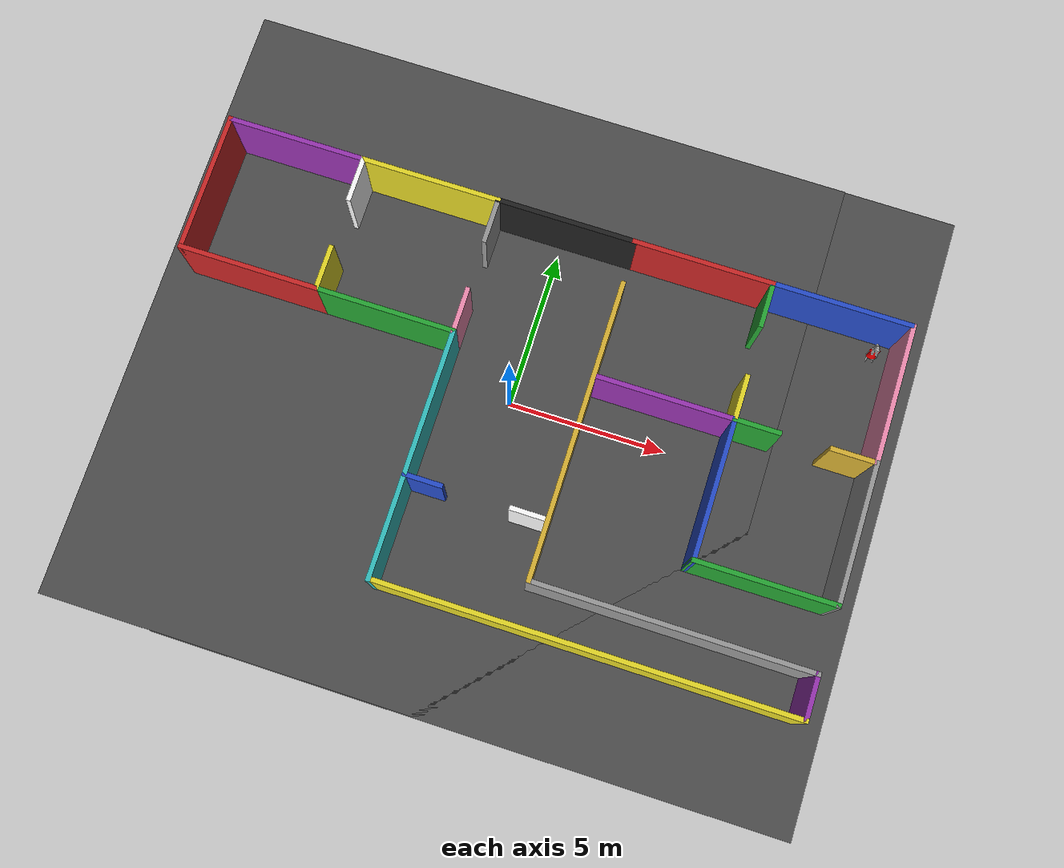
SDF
<sdf version="1.6">
 <world name="default">
  <model name="ground_plane">
   <static>1</static>
   <link name="link">
    <collision name="collision">
     <geometry><plane><normal>0 0 1</normal><size>100 100</size></plane></geometry>
     <surface><friction><ode><mu>100</mu><mu2>50</mu2></ode></friction></surface>
    </collision>
    <visual name="visual">
     <cast_shadows>0</cast_shadows>
     <geometry><plane><normal>0 0 1</normal><size>100 100</size></plane></geometry>
     <material>
      <script><uri>file://media/materials/scripts/gazebo.material</uri><name>Gazebo/Grey</name></script>
     </material>
    </visual>
   </link>
  </model>
  <gravity>0 0 -9.8</gravity>
  <magnetic_field>6e-06 2.3e-05 -4.2e-05</magnetic_field>
  <atmosphere type="adiabatic"/>
  <physics name="default_physics" default="0" type="ode">
   <max_step_size>0.001</max_step_size>
   <real_time_factor>1</real_time_factor>
   <real_time_update_rate>1000</real_time_update_rate>
  </physics>
  <scene><ambient>0.4 0.4 0.4 1</ambient><background>0.7 0.7 0.7 1</background><shadows>1</shadows></scene>
  <spherical_coordinates>
   <surface_model>EARTH_WGS84</surface_model>
   <latitude_deg>0</latitude_deg>
   <longitude_deg>0</longitude_deg>
   <elevation>0</elevation>
   <heading_deg>0</heading_deg>
  </spherical_coordinates>
  <model name="Woorld_New">
   <pose>0.055568 -0.612256 0 0 -0 0</pose>
   <link name="Wall_0">
    <collision name="Wall_0_Collision">
     <geometry><box><size>4.5 0.15 2.5</size></box></geometry>
     <pose>0 0 1.25 0 -0 0</pose>
    </collision>
    <visual name="Wall_0_Visual">
     <pose>0 0 1.25 0 -0 0</pose>
     <geometry><box><size>4.5 0.15 2.5</size></box></geometry>
     <material>
      <script><uri>file://media/materials/scripts/gazebo.material</uri><name>Gazebo/Red</name></script>
      <ambient>1 1 1 1</ambient>
     </material>
     <meta><layer>0</layer></meta>
    </visual>
    <pose>-10.8752 3.875 0 0 -0 1.5708</pose>
   </link>
   <link name="Wall_11">
    <collision name="Wall_11_Collision">
     <geometry><box><size>4.5 0.15 2.5</size></box></geometry>
     <pose>0 0 1.25 0 -0 0</pose>
    </collision>
    <visual name="Wall_11_Visual">
     <pose>0 0 1.25 0 -0 0</pose>
     <geometry><box><size>4.5 0.15 2.5</size></box></geometry>
     <material>
      <script><uri>file://media/materials/scripts/gazebo.material</uri><name>Gazebo/Green</name></script>
      <ambient>1 1 1 1</ambient>
     </material>
     <meta><layer>0</layer></meta>
    </visual>
    <pose>-4.35017 1.7 0 0 -0 0</pose>
   </link>
   <link name="Wall_13">
    <collision name="Wall_13_Collision">
     <geometry><box><size>4.5 0.15 2.5</size></box></geometry>
     <pose>0 0 1.25 0 -0 0</pose>
    </collision>
    <visual name="Wall_13_Visual">
     <pose>0 0 1.25 0 -0 0</pose>
     <geometry><box><size>4.5 0.15 2.5</size></box></geometry>
     <material>
      <script><uri>file://media/materials/scripts/gazebo.material</uri><name>Gazebo/Yellow</name></script>
      <ambient>1 1 1 1</ambient>
     </material>
     <meta><layer>0</layer></meta>
    </visual>
    <pose>-4.35017 6.05 0 0 -0 0</pose>
   </link>
   <link name="Wall_14">
    <collision name="Wall_14_Collision">
     <geometry><box><size>1.5 0.15 2.5</size></box></geometry>
     <pose>0 0 1.25 0 -0 0</pose>
    </collision>
    <visual name="Wall_14_Visual">
     <pose>0 0 1.25 0 -0 0</pose>
     <geometry><box><size>1.5 0.15 2.5</size></box></geometry>
     <material>
      <script><uri>file://media/materials/scripts/gazebo.material</uri><name>Gazebo/Grey</name></script>
      <ambient>1 1 1 1</ambient>
     </material>
     <meta><layer>0</layer></meta>
    </visual>
    <pose>-2.17517 5.375 0 0 0 -1.5708</pose>
   </link>
   <link name="Wall_16">
    <collision name="Wall_16_Collision">
     <geometry><box><size>1.5 0.15 2.5</size></box></geometry>
     <pose>0 0 1.25 0 -0 0</pose>
    </collision>
    <visual name="Wall_16_Visual">
     <pose>0 0 1.25 0 -0 0</pose>
     <geometry><box><size>1.5 0.15 2.5</size></box></geometry>
     <material>
      <script><uri>file://media/materials/scripts/gazebo.material</uri><name>Gazebo/Pink</name></script>
      <ambient>1 1 1 1</ambient>
     </material>
     <meta><layer>0</layer></meta>
    </visual>
    <pose>-2.17517 2.375 0 0 -0 1.5708</pose>
   </link>
   <link name="Wall_18">
    <collision name="Wall_18_Collision">
     <geometry><box><size>4.5 0.15 2.5</size></box></geometry>
     <pose>0 0 1.25 0 -0 0</pose>
    </collision>
    <visual name="Wall_18_Visual">
     <pose>0 0 1.25 0 -0 0</pose>
     <geometry><box><size>4.5 0.15 2.5</size></box></geometry>
     <material>
      <script><uri>file://media/materials/scripts/gazebo.material</uri><name>Gazebo/FlatBlack</name></script>
      <ambient>1 1 1 1</ambient>
     </material>
     <meta><layer>0</layer></meta>
    </visual>
    <pose>-0.000168 6.05 0 0 -0 0</pose>
   </link>
   <link name="Wall_2">
    <collision name="Wall_2_Collision">
     <geometry><box><size>4.5 0.15 2.5</size></box></geometry>
     <pose>0 0 1.25 0 -0 0</pose>
    </collision>
    <visual name="Wall_2_Visual">
     <pose>0 0 1.25 0 -0 0</pose>
     <geometry><box><size>4.5 0.15 2.5</size></box></geometry>
     <material>
      <script><uri>file://media/materials/scripts/gazebo.material</uri><name>Gazebo/Purple</name></script>
      <ambient>1 1 1 1</ambient>
     </material>
     <meta><layer>0</layer></meta>
    </visual>
    <pose>-8.70017 6.05 0 0 -0 0</pose>
   </link>
   <link name="Wall_20">
    <collision name="Wall_20_Collision">
     <geometry><box><size>7.9 0.15 2.5</size></box></geometry>
     <pose>0 0 1.25 0 -0 0</pose>
    </collision>
    <visual name="Wall_20_Visual">
     <pose>0 0 1.25 0 -0 0</pose>
     <geometry><box><size>7.9 0.15 2.5</size></box></geometry>
     <material>
      <script><uri>file://media/materials/scripts/gazebo.material</uri><name>Gazebo/Turquoise</name></script>
      <ambient>1 1 1 1</ambient>
     </material>
     <meta><layer>0</layer></meta>
    </visual>
    <pose>-2.17517 -2.175 0 0 0 -1.5708</pose>
   </link>
   <link name="Wall_22">
    <collision name="Wall_22_Collision">
     <geometry><box><size>1.25 0.15 2.5</size></box></geometry>
     <pose>0 0 1.25 0 -0 0</pose>
    </collision>
    <visual name="Wall_22_Visual">
     <pose>0 0 1.25 0 -0 0</pose>
     <geometry><box><size>1.25 0.15 2.5</size></box></geometry>
     <material>
      <script><uri>file://media/materials/scripts/gazebo.material</uri><name>Gazebo/BlueLaser</name></script>
      <ambient>1 1 1 1</ambient>
     </material>
     <meta><layer>0</layer></meta>
    </visual>
    <pose>-1.61117 -2.848 0 0 -0 0</pose>
   </link>
   <link name="Wall_24">
    <collision name="Wall_24_Collision">
     <geometry><box><size>9.5 0.15 2.5</size></box></geometry>
     <pose>0 0 1.25 0 -0 0</pose>
    </collision>
    <visual name="Wall_24_Visual">
     <pose>0 0 1.25 0 -0 0</pose>
     <geometry><box><size>9.5 0.15 2.5</size></box></geometry>
     <material>
      <script><uri>file://media/materials/scripts/gazebo.material</uri><name>Gazebo/Gold</name></script>
      <ambient>1 1 1 1</ambient>
     </material>
     <meta><layer>0</layer></meta>
    </visual>
    <pose>2.2188 -0.010529 0 0 0 -1.5708</pose>
   </link>
   <link name="Wall_29">
    <collision name="Wall_29_Collision">
     <geometry><box><size>1.25 0.15 2.5</size></box></geometry>
     <pose>0 0 1.25 0 -0 0</pose>
    </collision>
    <visual name="Wall_29_Visual">
     <pose>0 0 1.25 0 -0 0</pose>
     <geometry><box><size>1.25 0.15 2.5</size></box></geometry>
     <material>
      <script><uri>file://media/materials/scripts/gazebo.material</uri><name>Gazebo/Chrome</name></script>
      <ambient>1 1 1 1</ambient>
     </material>
     <meta><layer>0</layer></meta>
    </visual>
    <pose>1.66774 -2.84088 0 0 -0 3.14159</pose>
   </link>
   <link name="Wall_3">
    <collision name="Wall_3_Collision">
     <geometry><box><size>1.5 0.15 2.5</size></box></geometry>
     <pose>0 0 1.25 0 -0 0</pose>
    </collision>
    <visual name="Wall_3_Visual">
     <pose>0 0 1.25 0 -0 0</pose>
     <geometry><box><size>1.5 0.15 2.5</size></box></geometry>
     <material>
      <script><uri>file://media/materials/scripts/gazebo.material</uri><name>Gazebo/Brick</name></script>
      <ambient>1 1 1 1</ambient>
     </material>
     <meta><layer>0</layer></meta>
    </visual>
    <pose>-6.52517 5.375 0 0 0 -1.5708</pose>
   </link>
   <link name="Wall_31">
    <collision name="Wall_31_Collision">
     <geometry><box><size>8.75 0.15 2.5</size></box></geometry>
     <pose>0 0 1.25 0 -0 0</pose>
    </collision>
    <visual name="Wall_31_Visual">
     <pose>0 0 1.25 0 -0 0</pose>
     <geometry><box><size>8.75 0.15 2.5</size></box></geometry>
     <material>
      <script><uri>file://media/materials/scripts/gazebo.material</uri><name>Gazebo/Grey</name></script>
      <ambient>1 1 1 1</ambient>
     </material>
     <meta><layer>0</layer></meta>
    </visual>
    <pose>6.51879 -4.68553 0 0 -0 0</pose>
   </link>
   <link name="Wall_33">
    <collision name="Wall_33_Collision">
     <geometry><box><size>13 0.15 2.5</size></box></geometry>
     <pose>0 0 1.25 0 -0 0</pose>
    </collision>
    <visual name="Wall_33_Visual">
     <pose>0 0 1.25 0 -0 0</pose>
     <geometry><box><size>13 0.15 2.5</size></box></geometry>
     <material>
      <script><uri>file://media/materials/scripts/gazebo.material</uri><name>Gazebo/Yellow</name></script>
      <ambient>1 1 1 1</ambient>
     </material>
     <meta><layer>0</layer></meta>
    </visual>
    <pose>4.39379 -6.03553 0 0 -0 3.14159</pose>
   </link>
   <link name="Wall_36">
    <collision name="Wall_36_Collision">
     <geometry><box><size>4.5 0.15 2.5</size></box></geometry>
     <pose>0 0 1.25 0 -0 0</pose>
    </collision>
    <visual name="Wall_36_Visual">
     <pose>0 0 1.25 0 -0 0</pose>
     <geometry><box><size>4.5 0.15 2.5</size></box></geometry>
     <material>
      <script><uri>file://media/materials/scripts/gazebo.material</uri><name>Gazebo/Red</name></script>
      <ambient>1 1 1 1</ambient>
     </material>
     <meta><layer>0</layer></meta>
    </visual>
    <pose>4.34983 6.05 0 0 -0 0</pose>
   </link>
   <link name="Wall_37">
    <collision name="Wall_37_Collision">
     <geometry><box><size>1.5 0.15 2.5</size></box></geometry>
     <pose>0 0 1.25 0 -0 0</pose>
    </collision>
    <visual name="Wall_37_Visual">
     <pose>0 0 1.25 0 -0 0</pose>
     <geometry><box><size>1.5 0.15 2.5</size></box></geometry>
     <material>
      <script><uri>file://media/materials/scripts/gazebo.material</uri><name>Gazebo/Green</name></script>
      <ambient>1 1 1 1</ambient>
     </material>
     <meta><layer>0</layer></meta>
    </visual>
    <pose>6.52483 5.375 0 0 0 -1.5708</pose>
   </link>
   <link name="Wall_39">
    <collision name="Wall_39_Collision">
     <geometry><box><size>4.5 0.15 2.5</size></box></geometry>
     <pose>0 0 1.25 0 -0 0</pose>
    </collision>
    <visual name="Wall_39_Visual">
     <pose>0 0 1.25 0 -0 0</pose>
     <geometry><box><size>4.5 0.15 2.5</size></box></geometry>
     <material>
      <script><uri>file://media/materials/scripts/gazebo.material</uri><name>Gazebo/Blue</name></script>
      <ambient>1 1 1 1</ambient>
     </material>
     <meta><layer>0</layer></meta>
    </visual>
    <pose>8.69983 6.05 0 0 -0 0</pose>
   </link>
   <link name="Wall_40">
    <collision name="Wall_40_Collision">
     <geometry><box><size>4.5 0.15 2.5</size></box></geometry>
     <pose>0 0 1.25 0 -0 0</pose>
    </collision>
    <visual name="Wall_40_Visual">
     <pose>0 0 1.25 0 -0 0</pose>
     <geometry><box><size>4.5 0.15 2.5</size></box></geometry>
     <material>
      <script><uri>file://media/materials/scripts/gazebo.material</uri><name>Gazebo/Pink</name></script>
      <ambient>1 1 1 1</ambient>
     </material>
     <meta><layer>0</layer></meta>
    </visual>
    <pose>10.8748 3.875 0 0 0 -1.5708</pose>
   </link>
   <link name="Wall_41">
    <collision name="Wall_41_Collision">
     <geometry><box><size>1.5 0.15 2.5</size></box></geometry>
     <pose>0 0 1.25 0 -0 0</pose>
    </collision>
    <visual name="Wall_41_Visual">
     <pose>0 0 1.25 0 -0 0</pose>
     <geometry><box><size>1.5 0.15 2.5</size></box></geometry>
     <material>
      <script><uri>file://media/materials/scripts/gazebo.material</uri><name>Gazebo/Gold</name></script>
      <ambient>1 1 1 1</ambient>
     </material>
     <meta><layer>0</layer></meta>
    </visual>
    <pose>10.1998 1.7 0 0 -0 3.14159</pose>
   </link>
   <link name="Wall_43">
    <collision name="Wall_43_Collision">
     <geometry><box><size>4.5 0.15 2.5</size></box></geometry>
     <pose>0 0 1.25 0 -0 0</pose>
    </collision>
    <visual name="Wall_43_Visual">
     <pose>0 0 1.25 0 -0 0</pose>
     <geometry><box><size>4.5 0.15 2.5</size></box></geometry>
     <material>
      <script><uri>file://media/materials/scripts/gazebo.material</uri><name>Gazebo/Purple</name></script>
      <ambient>1 1 1 1</ambient>
     </material>
     <meta><layer>0</layer></meta>
    </visual>
    <pose>4.39133 1.68063 0 0 -0 0</pose>
   </link>
   <link name="Wall_44">
    <collision name="Wall_44_Collision">
     <geometry><box><size>1.5 0.15 2.5</size></box></geometry>
     <pose>0 0 1.25 0 -0 0</pose>
    </collision>
    <visual name="Wall_44_Visual">
     <pose>0 0 1.25 0 -0 0</pose>
     <geometry><box><size>1.5 0.15 2.5</size></box></geometry>
     <material>
      <script><uri>file://media/materials/scripts/gazebo.material</uri><name>Gazebo/Yellow</name></script>
      <ambient>1 1 1 1</ambient>
     </material>
     <meta><layer>0</layer></meta>
    </visual>
    <pose>6.56633 2.35562 0 0 -0 1.5708</pose>
   </link>
   <link name="Wall_46">
    <collision name="Wall_46_Collision">
     <geometry><box><size>1.5 0.15 2.5</size></box></geometry>
     <pose>0 0 1.25 0 -0 0</pose>
    </collision>
    <visual name="Wall_46_Visual">
     <pose>0 0 1.25 0 -0 0</pose>
     <geometry><box><size>1.5 0.15 2.5</size></box></geometry>
     <material>
      <script><uri>file://media/materials/scripts/gazebo.material</uri><name>Gazebo/Green</name></script>
      <ambient>1 1 1 1</ambient>
     </material>
     <meta><layer>0</layer></meta>
    </visual>
    <pose>7.24133 1.68063 0 0 -0 0</pose>
   </link>
   <link name="Wall_49">
    <collision name="Wall_49_Collision">
     <geometry><box><size>4.5 0.15 2.5</size></box></geometry>
     <pose>0 0 1.25 0 -0 0</pose>
    </collision>
    <visual name="Wall_49_Visual">
     <pose>0 0 1.25 0 -0 0</pose>
     <geometry><box><size>4.5 0.15 2.5</size></box></geometry>
     <material>
      <script><uri>file://media/materials/scripts/gazebo.material</uri><name>Gazebo/Grey</name></script>
      <ambient>1 1 1 1</ambient>
     </material>
     <meta><layer>0</layer></meta>
    </visual>
    <pose>10.8748 -0.475 0 0 0 -1.5708</pose>
   </link>
   <link name="Wall_5">
    <collision name="Wall_5_Collision">
     <geometry><box><size>4.5 0.15 2.5</size></box></geometry>
     <pose>0 0 1.25 0 -0 0</pose>
    </collision>
    <visual name="Wall_5_Visual">
     <pose>0 0 1.25 0 -0 0</pose>
     <geometry><box><size>4.5 0.15 2.5</size></box></geometry>
     <material>
      <script><uri>file://media/materials/scripts/gazebo.material</uri><name>Gazebo/Red</name></script>
      <ambient>1 1 1 1</ambient>
     </material>
     <meta><layer>0</layer></meta>
    </visual>
    <pose>-8.70017 1.7 0 0 -0 0</pose>
   </link>
   <link name="Wall_53">
    <collision name="Wall_53_Collision">
     <geometry><box><size>4.5 0.15 2.5</size></box></geometry>
     <pose>0 0 1.25 0 -0 0</pose>
    </collision>
    <visual name="Wall_53_Visual">
     <pose>0 0 1.25 0 -0 0</pose>
     <geometry><box><size>4.5 0.15 2.5</size></box></geometry>
     <material>
      <script><uri>file://media/materials/scripts/gazebo.material</uri><name>Gazebo/Blue</name></script>
      <ambient>1 1 1 1</ambient>
     </material>
     <meta><layer>0</layer></meta>
    </visual>
    <pose>6.56633 -0.494375 0 0 0 -1.5708</pose>
   </link>
   <link name="Wall_54">
    <collision name="Wall_54_Collision">
     <geometry><box><size>4.45855 0.15 2.5</size></box></geometry>
     <pose>0 0 1.25 0 -0 0</pose>
    </collision>
    <visual name="Wall_54_Visual">
     <pose>0 0 1.25 0 -0 0</pose>
     <geometry><box><size>4.45855 0.15 2.5</size></box></geometry>
     <material>
      <script><uri>file://media/materials/scripts/gazebo.material</uri><name>Gazebo/Green</name></script>
      <ambient>1 1 1 1</ambient>
     </material>
     <meta><layer>0</layer></meta>
    </visual>
    <pose>8.72058 -2.65969 0 0 -0 0.004497</pose>
   </link>
   <link name="Wall_56">
    <collision name="Wall_56_Collision">
     <geometry><box><size>1.5 0.15 2.5</size></box></geometry>
     <pose>0 0 1.25 0 -0 0</pose>
    </collision>
    <visual name="Wall_56_Visual">
     <pose>0 0 1.25 0 -0 0</pose>
     <geometry><box><size>1.5 0.15 2.5</size></box></geometry>
     <material>
      <script><uri>file://media/materials/scripts/gazebo.material</uri><name>Gazebo/Purple</name></script>
      <ambient>1 1 1 1</ambient>
     </material>
     <meta><layer>0</layer></meta>
    </visual>
    <pose>10.8188 -5.36053 0 0 0 -1.5708</pose>
   </link>
   <link name="Wall_6">
    <collision name="Wall_6_Collision">
     <geometry><box><size>1.5 0.15 2.5</size></box></geometry>
     <pose>0 0 1.25 0 -0 0</pose>
    </collision>
    <visual name="Wall_6_Visual">
     <pose>0 0 1.25 0 -0 0</pose>
     <geometry><box><size>1.5 0.15 2.5</size></box></geometry>
     <material>
      <script><uri>file://media/materials/scripts/gazebo.material</uri><name>Gazebo/Yellow</name></script>
      <ambient>1 1 1 1</ambient>
     </material>
     <meta><layer>0</layer></meta>
    </visual>
    <pose>-6.52517 2.375 0 0 -0 1.5708</pose>
   </link>
   <static>1</static>
  </model>
  <light name="user_directional_light_0" type="directional">
   <pose>4.28918 3.18806 1 0 -0 0</pose>
   <diffuse>0.5 0.5 0.5 1</diffuse>
   <specular>0.1 0.1 0.1 1</specular>
   <direction>0.1 0.1 -0.9</direction>
   <attenuation>
    <range>20</range>
    <constant>0.5</constant>
    <linear>0.01</linear>
    <quadratic>0.001</quadratic>
   </attenuation>
  </light>
  <light name="user_directional_light_1" type="directional">
   <pose>8.89212 0.608858 1 0 -0 0</pose>
   <diffuse>0.5 0.5 0.5 1</diffuse>
   <specular>0.1 0.1 0.1 1</specular>
   <direction>0.1 0.1 -0.9</direction>
   <attenuation>
    <range>20</range>
    <constant>0.5</constant>
    <linear>0.01</linear>
    <quadratic>0.001</quadratic>
   </attenuation>
  </light>
  <model name="asphalt_plane">
   <static>1</static>
   <link name="link">
    <collision name="collision"><geometry><box><size>20 20 0.1</size></box></geometry></collision>
    <visual name="visual">
     <cast_shadows>0</cast_shadows>
     <geometry><box><size>20 20 0.1</size></box></geometry>
     <material>
      <script>
       <uri>model://asphalt_plane/materials/scripts</uri>
       <uri>model://asphalt_plane/materials/textures</uri>
       <name>vrc/asphalt</name>
      </script>
     </material>
    </visual>
   </link>
   <pose>-1.81893 0.018392 0 0 -0 0</pose>
  </model>
  <model name="asphalt_plane_0">
   <static>1</static>
   <link name="link">
    <collision name="collision"><geometry><box><size>20 20 0.1</size></box></geometry></collision>
    <visual name="visual">
     <cast_shadows>0</cast_shadows>
     <geometry><box><size>20 20 0.1</size></box></geometry>
     <material>
      <script>
       <uri>model://asphalt_plane/materials/scripts</uri>
       <uri>model://asphalt_plane/materials/textures</uri>
       <name>vrc/asphalt</name>
      </script>
     </material>
    </visual>
   </link>
   <pose>1.83249 -0.000426 0 0 -0 0</pose>
  </model>
  <model name="girl_brunette">
   <static>1</static>
   <pose>10.3074 4.79058 0 1.57 -0 0</pose>
   <link name="defaultModel_0::custom_0">
    <visual name="custom_0_visual">
     <geometry>
      <mesh><uri>model://girl_brunette/girl_brunette/girl_brunette.dae</uri><scale>1 1 1</scale></mesh>
     </geometry>
    </visual>
    <collision name="custom_0_collision">
     <geometry>
      <mesh><uri>model://girl_brunette/girl_brunette/girl_brunette.dae</uri><scale>1 1 1</scale></mesh>
     </geometry>
    </collision>
   </link>
  </model>
  <light name="user_point_light_0" type="point">
   <pose>8.47403 1.12793 1 0 -0 0</pose>
   <diffuse>0.5 0.5 0.5 1</diffuse>
   <specular>0.1 0.1 0.1 1</specular>
   <attenuation>
    <range>20</range>
    <constant>0.5</constant>
    <linear>0.01</linear>
    <quadratic>0.001</quadratic>
   </attenuation>
   <cast_shadows>0</cast_shadows>
   <direction>0 0 -1</direction>
  </light>
 </world>
</sdf>
